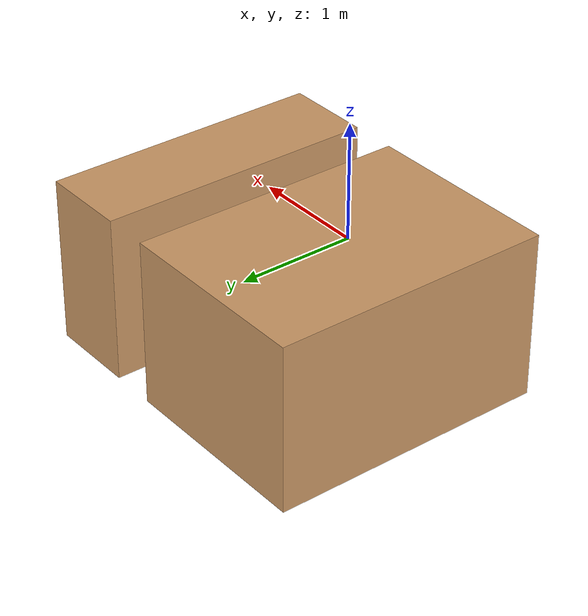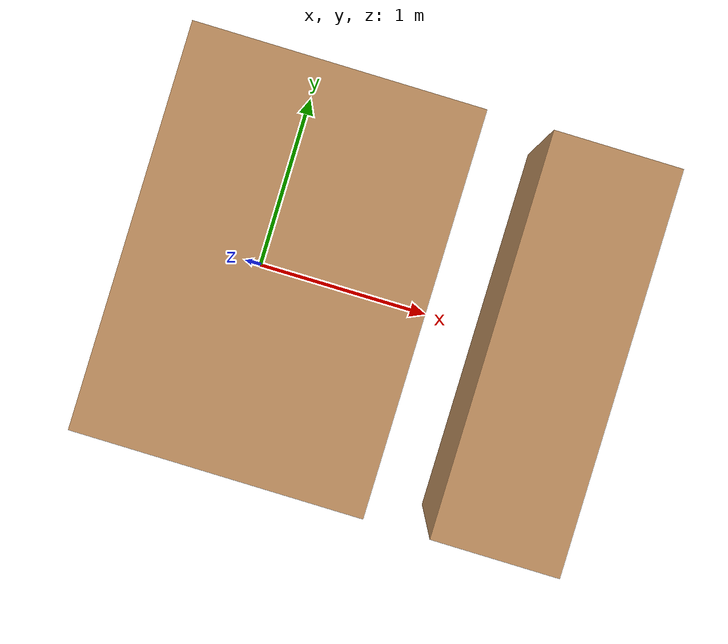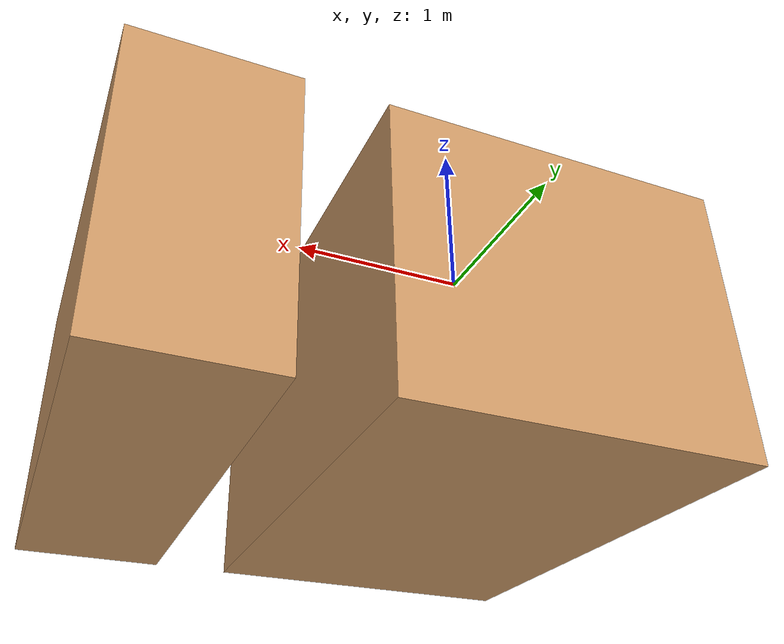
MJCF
<mujoco model="test_trench_box_terrain">
  <asset>
    <mesh name="test_trench_box_terrain_mesh0" file="meshs/test_trench_box_terrain_mesh0.stl"/>
    <mesh name="test_trench_box_terrain_mesh1" file="meshs/test_trench_box_terrain_mesh1.stl"/>
  </asset>
  <worldbody>
    <geom type="mesh" mesh="test_trench_box_terrain_mesh0" rgba="0.8 0.6 0.4 1" pos="-0.8 -1.25 -0.05" contype="1" conaffinity="1" group="1"/>
    <geom type="mesh" mesh="test_trench_box_terrain_mesh1" rgba="0.8 0.6 0.4 1" pos="-0.8 -1.25 -0.05" contype="1" conaffinity="1" group="1"/>
  </worldbody>
  <custom>
    <text name="terrain:test_trench_box_terrain" data="difficulty:0.8279504967218619"/>
    <text name="terrain_key_pos0" data="0.5 0.0 -0.05"/>
    <text name="terrain_key_pos1" data="1.0 0.0 -0.05"/>
    <text name="terrain_key_pos2" data="1.1 0.0 -0.05"/>
    <text name="terrain_key_pos3" data="1.2 0.0 -0.05"/>
    <text name="terrain_key_pos4" data="1.4069876241804653 0.0 -0.05"/>
    <text name="terrain_key_pos5" data="1.7069876241804651 0.0 -0.05"/>
  </custom>
</mujoco>
